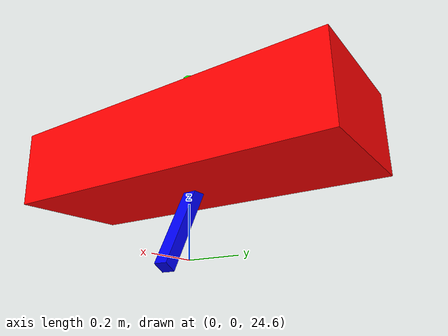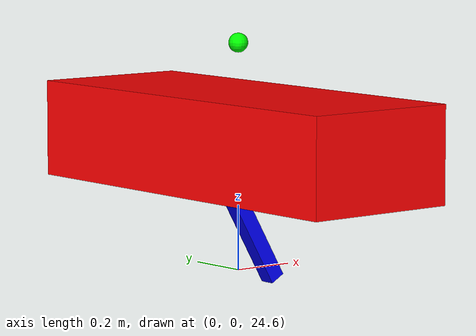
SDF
<?xml version="1.0" ?>
<sdf version="1.6">

  <model name="box_imu_cam">
    <static>false</static>

    <!-- ================= GLOBAL POSE ================= -->
    <!-- Start drona 7 m nad ziemią -->
    <pose>0 0 25 0 0 0</pose>

    <!-- ================= BASE LINK ================= -->
    <link name="base_link">
      <pose>0 0 0 0 0 0</pose>

      <inertial>
        <mass>1.0</mass>
        <inertia>
          <ixx>0.02</ixx>
          <iyy>0.02</iyy>
          <izz>0.04</izz>
        </inertia>
      </inertial>

      <visual name="base_visual">
        <geometry>
          <box>
            <size>0.5 1.3 0.3</size>
          </box>
        </geometry>
        <material>
          <ambient>1 0 0 1</ambient>
          <diffuse>1 0 0 1</diffuse>
          <specular>0.2 0.2 0.2 1</specular>
        </material>
      </visual>

      <collision name="base_collision">
        <geometry>
          <box>
            <size>0.3 0.3 0.2</size>
          </box>
        </geometry>
      </collision>
    </link>

    <!-- ================= CAMERA LINK ================= -->
    <!-- ROS-owo: kamera patrzy w +X -->
    <!-- 60 stopni w dół => pitch = -1.0472 -->
    <link name="camera_link">
      <pose>0 0 -0.2 0 1.0472 0</pose>

      <visual name="camera_visual">
        <geometry>
          <box>
            <size>0.55 0.05 0.05</size>
          </box>
        </geometry>
        <material>
          <ambient>0 0 1 1</ambient>
          <diffuse>0 0 1 1</diffuse>
        </material>
      </visual>

      <!-- SENSOR KAMERY: BEZ ROTACJI -->
      <sensor name="camera_sensor" type="camera">
        <pose>0 0 0 0 0 0</pose>
        <update_rate>30</update_rate>

        <camera>
          <horizontal_fov>1.396</horizontal_fov>
          <image>
            <width>640</width>
            <height>480</height>
            <format>R8G8B8</format>
          </image>
          <clip>
            <near>0.1</near>
            <far>200</far>
          </clip>
        </camera>

        <plugin name="camera_controller" filename="libgazebo_ros_camera.so">
          <ros>
            <namespace>/camera</namespace>
          </ros>
          <camera_name>camera</camera_name>
          <frame_name>camera_link</frame_name>
        </plugin>
      </sensor>
    </link>

    <!-- ================= IMU LINK ================= -->
    <link name="imu_link">
      <pose>0 0 0.3 0 0 0</pose>

      <visual name="imu_visual">
        <geometry>
          <sphere>
            <radius>0.03</radius>
          </sphere>
        </geometry>
        <material>
          <ambient>0 1 0 1</ambient>
          <diffuse>0 1 0 1</diffuse>
        </material>
      </visual>

      <sensor name="imu_sensor" type="imu">
        <always_on>true</always_on>
        <update_rate>200</update_rate>

        <plugin name="imu_plugin" filename="libgazebo_ros_imu_sensor.so">
          <ros>
            <namespace>/imu</namespace>
          </ros>
          <topicName>data</topicName>
          <frame_name>imu_link</frame_name>

          <angular_velocity_noise>
            <mean>0.0</mean>
            <stddev>0.0005</stddev>
          </angular_velocity_noise>

          <linear_acceleration_noise>
            <mean>0.0</mean>
            <stddev>0.01</stddev>
          </linear_acceleration_noise>

          <initial_orientation_as_reference>false</initial_orientation_as_reference>
        </plugin>
      </sensor>
    </link>

    <!-- ================= JOINTS ================= -->
    <joint name="camera_joint" type="fixed">
      <parent>base_link</parent>
      <child>camera_link</child>
    </joint>

    <joint name="imu_joint" type="fixed">
      <parent>base_link</parent>
      <child>imu_link</child>
    </joint>

    <!-- ================= PLANAR MOVE ================= -->
    <plugin name="planar_move" filename="libgazebo_ros_planar_move.so">
      <ros>
        <namespace>/cmd</namespace>
      </ros>

      <command_topic>cmd_vel</command_topic>
      <odometry_topic>odom</odometry_topic>
      <odometry_frame>odom</odometry_frame>
      <robot_base_frame>base_link</robot_base_frame>

      <!-- wysokość utrzymywana przez plugin -->
      <z_offset>7.0</z_offset>
      <publish_tf>true</publish_tf>
    </plugin>

  </model>
</sdf>
